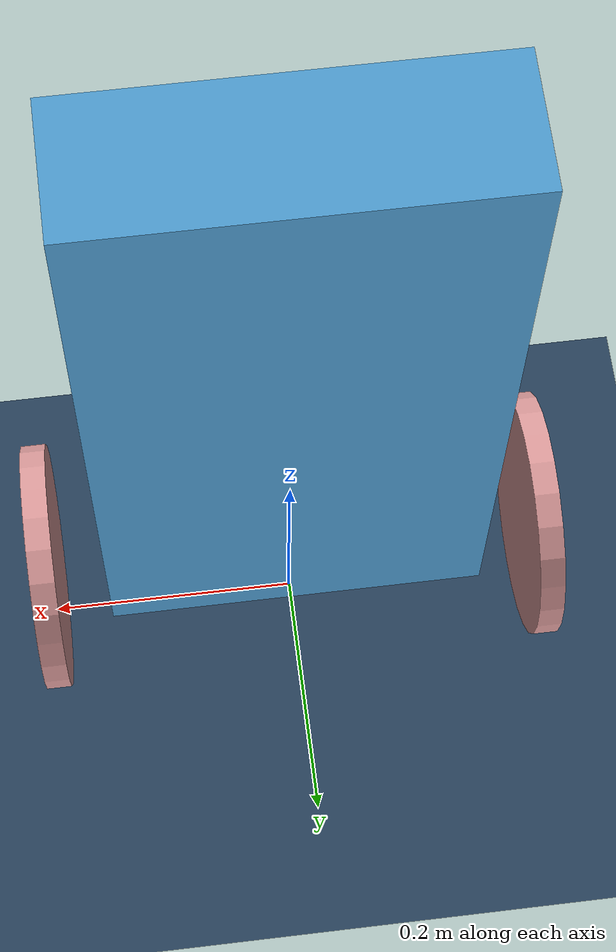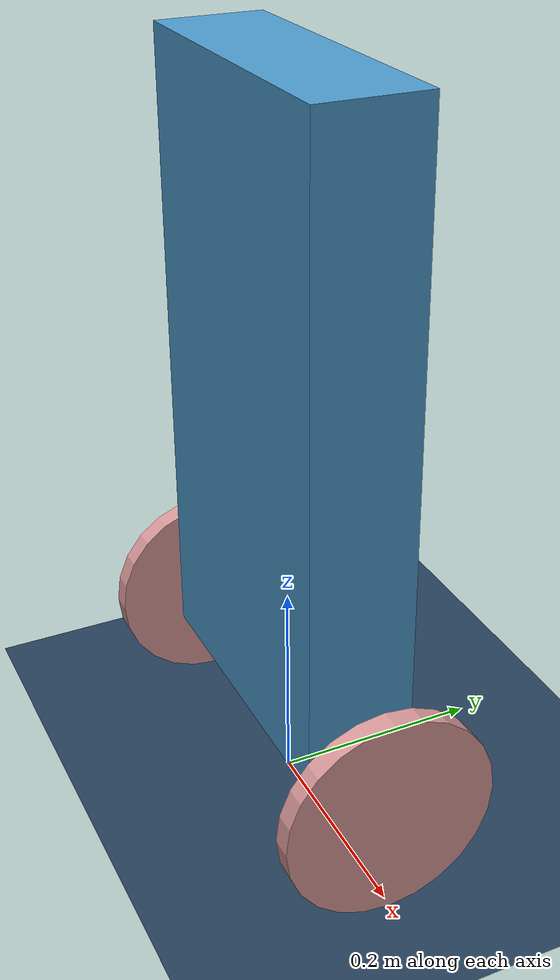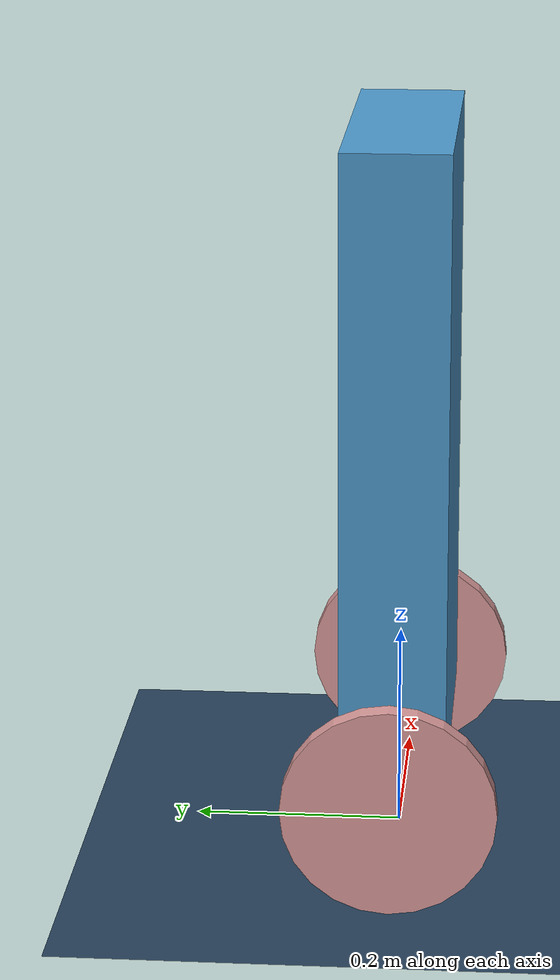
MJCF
<mujoco model="Two Wheel Inverse Pendulum">
    <compiler angle="radian" coordinate="local" inertiafromgeom="true"/>

    <option timestep="0.002" integrator="RK4" gravity="0 0 -9.81"/>

    <visual>
        <map fogstart="3" fogend="5" znear="0.05"/>
        <quality shadowsize="2048"/>
        <scale framelength="0.3" framewidth="0.02" contactwidth="0.05" contactheight="0.02"/>
    </visual>

    <asset>
        <texture name="grid" type="2d" builtin="checker" rgb1=".2 .3 .4" rgb2=".1 .2 .3" width="300" height="300"/>
        <texture name="wheel_pattern" type="2d" builtin="checker" rgb1="0.8 0.3 0.3" rgb2="0.9 0.9 0.9" width="8" height="8"/>
        <material name="grid" texture="grid" texrepeat="5 5" specular="0.7" shininess="0.1" reflectance="0.1"/>
        <material name="body" rgba="0.3 0.6 0.8 1" specular="0.8" shininess="0.5"/>
        <material name="wheel" texture="wheel_pattern" texrepeat="4 1" specular="0.8" shininess="0.5"/>
    </asset>

    <default>
        <geom contype="1" conaffinity="1" friction="0.8 0.05 0.05" density="1000" solref="0.01 1" solimp="0.99 0.99 0.01"/>
        <joint damping="0.01"/>
        <motor ctrlrange="-10 10" gear="50" ctrllimited="true"/>
    </default>

    <worldbody>
        <!-- Ground -->
        <geom name="floor" pos="0 0 0" size="10 10 0.1" type="plane" material="grid" friction="1.0 0.05 0.05" solref="0.01 1" solimp="0.99 0.99 0.01"/>

        <!-- Light sources -->
        <light name="light1" pos="2 2 4" dir="-1 -1 -2" diffuse="0.8 0.8 0.8"/>
        <light name="light2" pos="-2 2 4" dir="1 -1 -2" diffuse="0.6 0.6 0.6"/>

        <!-- Camera -->
        <camera name="main_cam" pos="3 3 2" xyaxes="-1 1 0 -0.3 -0.3 1"/>

        <!-- 车身 -->
        <body name="cart" pos="0 0 0.1">
            <!-- 添加自由关节，使车身能够在地面上移动 -->
            <joint name="cart_joint" type="free"/>
            <!-- 主体 -->
            <geom name="body" type="box" size="0.15 0.05 0.3" pos="0 0 0.3" material="body"/>
            <inertial pos="0 0 0.15" mass="0.5" diaginertia="0.05 0.05 0.02"/>

            <!-- 左轮 -->
            <body name="left_wheel" pos="-0.2 0 0">
                <joint name="left_wheel_joint" type="hinge" axis="1 0 0" pos="0 0 0"/>
                <geom name="left_wheel_geom" type="cylinder" size="0.1 0.01" euler="0 1.5708 0" material="wheel" friction="1.0 0.05 0.05" solref="0.01 1" solimp="0.99 0.99 0.01"/>
                <!-- 添加轮辐标记，使旋转更明显 -->
                <geom name="left_wheel_spoke1" type="box" size="0.08 0.005 0.005" pos="0 0 0" euler="0 1.5708 0" rgba="0.1 0.1 0.1 1"/>
                <geom name="left_wheel_spoke2" type="box" size="0.08 0.005 0.005" pos="0 0 0" euler="0 1.5708 1.5708" rgba="0.1 0.1 0.1 1"/>
                <inertial pos="0 0 0" mass="0.5" diaginertia="0.01 0.005 0.01"/>
            </body>

            <!-- 右轮 -->
            <body name="right_wheel" pos="0.2 0 0">
                <joint name="right_wheel_joint" type="hinge" axis="1 0 0" pos="0 0 0"/>
                <geom name="right_wheel_geom" type="cylinder" size="0.1 0.01" euler="0 1.5708 0" material="wheel" friction="1.0 0.05 0.05" solref="0.01 1" solimp="0.99 0.99 0.01"/>
                <!-- 添加轮辐标记，使旋转更明显 -->
                <geom name="right_wheel_spoke1" type="box" size="0.08 0.005 0.005" pos="0 0 0" euler="0 1.5708 0" rgba="0.1 0.1 0.1 1"/>
                <geom name="right_wheel_spoke2" type="box" size="0.08 0.005 0.005" pos="0 0 0" euler="0 1.5708 1.5708" rgba="0.1 0.1 0.1 1"/>
                <inertial pos="0 0 0" mass="0.5" diaginertia="0.01 0.005 0.01"/>
            </body>
        </body>
        <!-- 平衡车结构：车身有自由关节，轮子作为车身的子体 -->
    </worldbody>

    <actuator>
        <!-- Motors for the wheels -->
        <motor name="left_motor" joint="left_wheel_joint" gear="2.5" ctrlrange="-5 5"/>
        <motor name="right_motor" joint="right_wheel_joint" gear="2.5" ctrlrange="-5 5"/>
    </actuator>

    <sensor>
        <!-- Position sensors -->
        <jointpos name="left_wheel_pos" joint="left_wheel_joint"/>
        <jointpos name="right_wheel_pos" joint="right_wheel_joint"/>

        <!-- Velocity sensors -->
        <jointvel name="left_wheel_vel" joint="left_wheel_joint"/>
        <jointvel name="right_wheel_vel" joint="right_wheel_joint"/>
    </sensor>
</mujoco>
